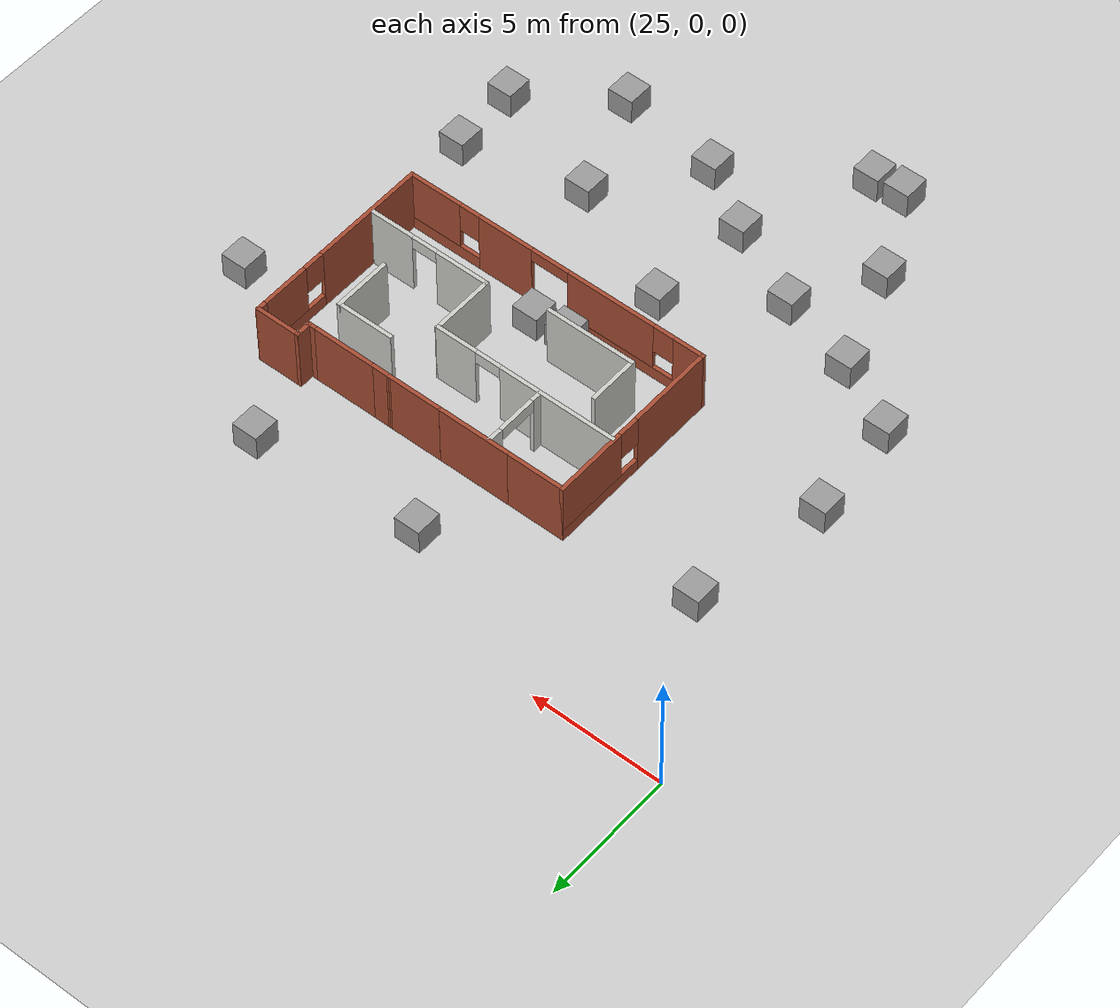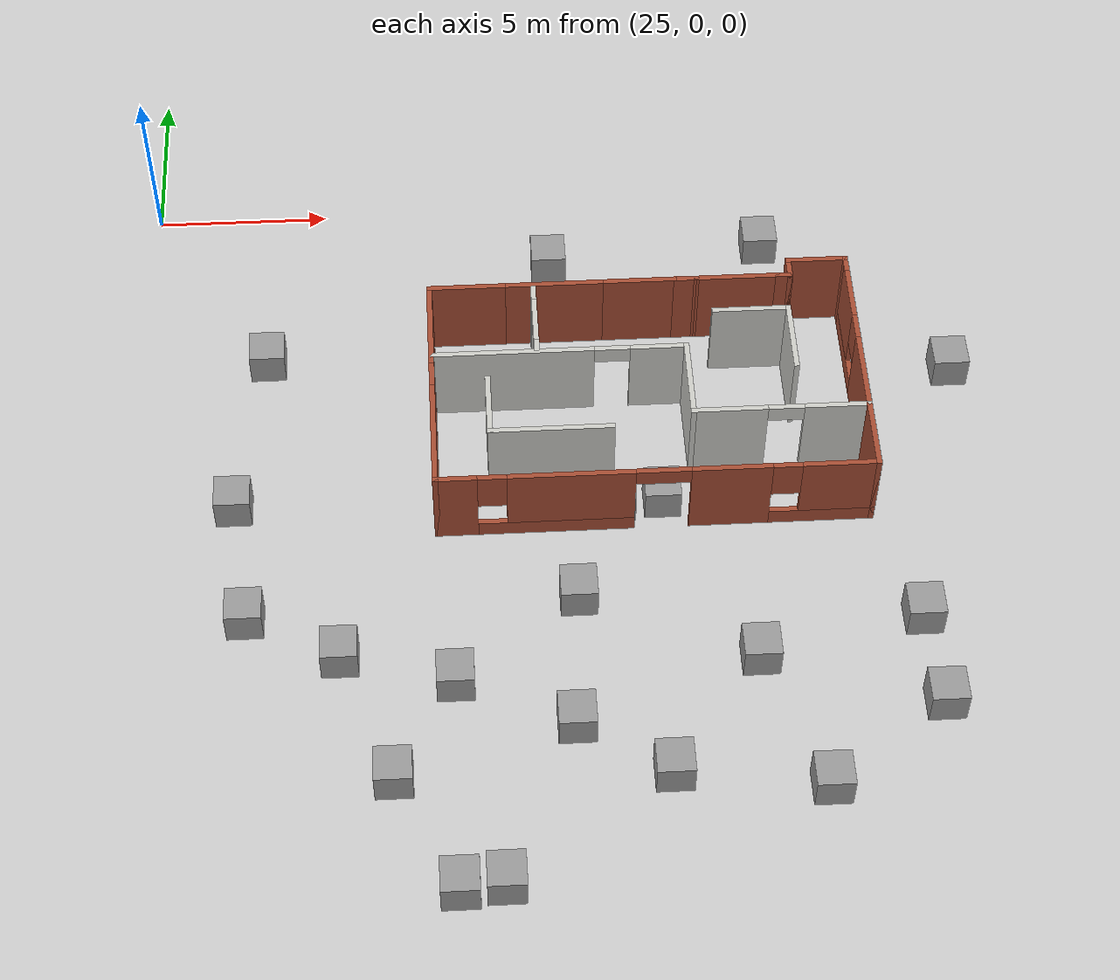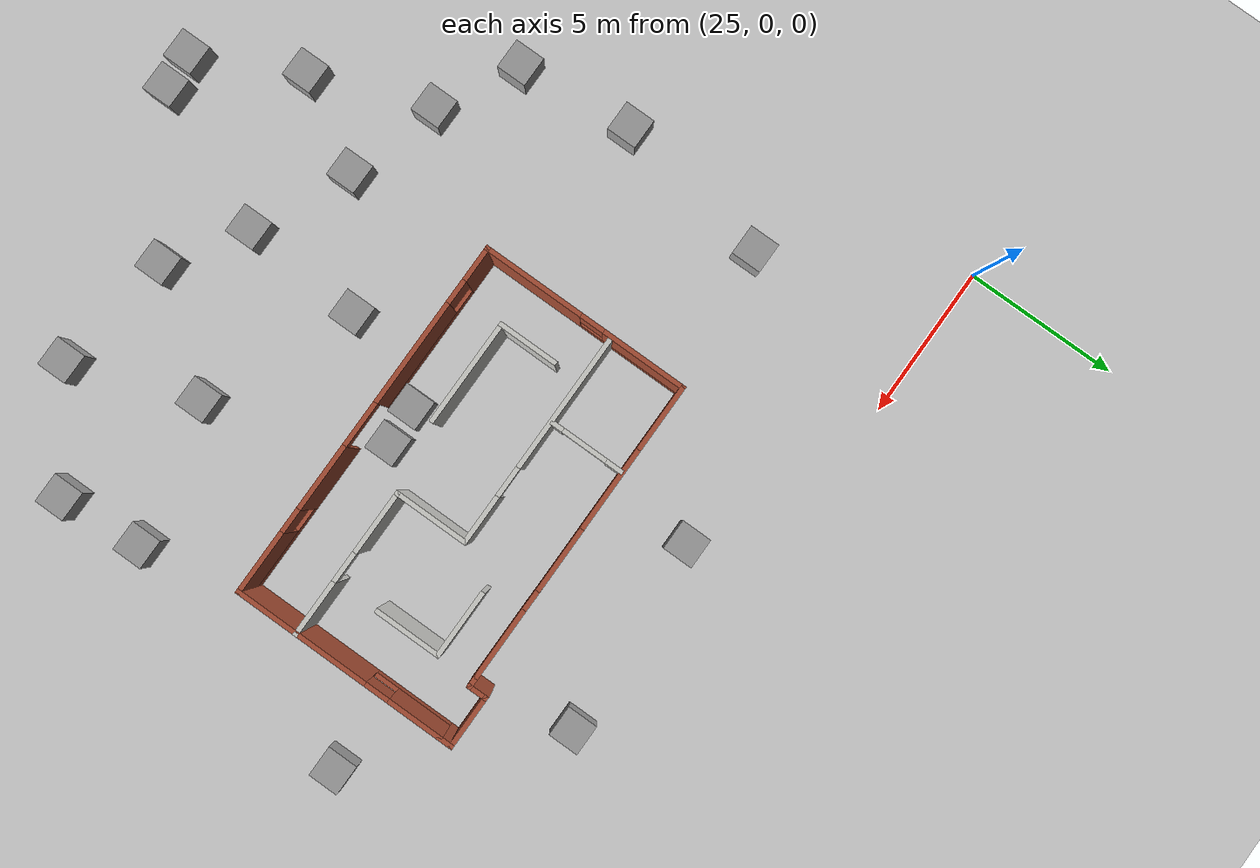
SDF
<sdf version="1.6">
 <world name="default">
  <model name="ground_plane">
   <static>1</static>
   <link name="link">
    <collision name="collision">
     <geometry><plane><normal>0 0 1</normal><size>100 100</size></plane></geometry>
     <surface><friction><ode><mu>100</mu><mu2>50</mu2></ode></friction></surface>
    </collision>
    <visual name="visual">
     <cast_shadows>0</cast_shadows>
     <geometry><plane><normal>0 0 1</normal><size>100 100</size></plane></geometry>
     <material>
      <script><uri>file://media/materials/scripts/gazebo.material</uri><name>Gazebo/Grey</name></script>
     </material>
    </visual>
   </link>
  </model>
  <model name="Multi_12_7home4">
   <pose>39.1247 -8.3603 0 0 -0 0</pose>
   <link name="Wall_20">
    <pose>-0.000494 -3.7 0 0 -0 0</pose>
    <visual name="Wall_20_Visual_0">
     <pose>-5.47297 0 1.25 0 -0 0</pose>
     <geometry><box><size>1.20406 0.15 2.5</size></box></geometry>
     <material>
      <script><uri>file://media/materials/scripts/gazebo.material</uri><name>Gazebo/Bricks</name></script>
      <ambient>0.996078 0.47451 0.0196078 1</ambient>
     </material>
     <meta><layer>0</layer></meta>
    </visual>
    <collision name="Wall_20_Collision_0">
     <geometry><box><size>1.20406 0.15 2.5</size></box></geometry>
     <pose>-5.47297 0 1.25 0 -0 0</pose>
    </collision>
    <visual name="Wall_20_Visual_1">
     <pose>2.02955 0 1.25 0 -0 0</pose>
     <geometry><box><size>2.20541 0.15 2.5</size></box></geometry>
     <material>
      <script><uri>file://media/materials/scripts/gazebo.material</uri><name>Gazebo/Bricks</name></script>
      <ambient>0.996078 0.47451 0.0196078 1</ambient>
     </material>
     <meta><layer>0</layer></meta>
    </visual>
    <collision name="Wall_20_Collision_1">
     <geometry><box><size>2.20541 0.15 2.5</size></box></geometry>
     <pose>2.02955 0 1.25 0 -0 0</pose>
    </collision>
    <visual name="Wall_20_Visual_2">
     <pose>-2.72205 0 0.25 0 -0 0</pose>
     <geometry><box><size>4.29778 0.15 0.5</size></box></geometry>
     <material>
      <script><uri>file://media/materials/scripts/gazebo.material</uri><name>Gazebo/Bricks</name></script>
      <ambient>0.996078 0.47451 0.0196078 1</ambient>
     </material>
     <meta><layer>0</layer></meta>
    </visual>
    <collision name="Wall_20_Collision_2">
     <geometry><box><size>4.29778 0.15 0.5</size></box></geometry>
     <pose>-2.72205 0 0.25 0 -0 0</pose>
    </collision>
    <visual name="Wall_20_Visual_3">
     <pose>4.60363 0 0.25 0 -0 0</pose>
     <geometry><box><size>2.94275 0.15 0.5</size></box></geometry>
     <material>
      <script><uri>file://media/materials/scripts/gazebo.material</uri><name>Gazebo/Bricks</name></script>
      <ambient>0.996078 0.47451 0.0196078 1</ambient>
     </material>
     <meta><layer>0</layer></meta>
    </visual>
    <collision name="Wall_20_Collision_3">
     <geometry><box><size>2.94275 0.15 0.5</size></box></geometry>
     <pose>4.60363 0 0.25 0 -0 0</pose>
    </collision>
    <visual name="Wall_20_Visual_4">
     <pose>-2.32205 0 1.5 0 -0 0</pose>
     <geometry><box><size>3.49778 0.15 2</size></box></geometry>
     <material>
      <script><uri>file://media/materials/scripts/gazebo.material</uri><name>Gazebo/Bricks</name></script>
      <ambient>0.996078 0.47451 0.0196078 1</ambient>
     </material>
     <meta><layer>0</layer></meta>
    </visual>
    <collision name="Wall_20_Collision_4">
     <geometry><box><size>3.49778 0.15 2</size></box></geometry>
     <pose>-2.32205 0 1.5 0 -0 0</pose>
    </collision>
    <visual name="Wall_20_Visual_5">
     <pose>-2.32205 0 1.5 0 -0 0</pose>
     <geometry><box><size>3.49778 0.15 2</size></box></geometry>
     <material>
      <script><uri>file://media/materials/scripts/gazebo.material</uri><name>Gazebo/Bricks</name></script>
      <ambient>0.996078 0.47451 0.0196078 1</ambient>
     </material>
     <meta><layer>0</layer></meta>
    </visual>
    <collision name="Wall_20_Collision_5">
     <geometry><box><size>3.49778 0.15 2</size></box></geometry>
     <pose>-2.32205 0 1.5 0 -0 0</pose>
    </collision>
    <visual name="Wall_20_Visual_6">
     <pose>5.00363 0 1.5 0 -0 0</pose>
     <geometry><box><size>2.14275 0.15 2</size></box></geometry>
     <material>
      <script><uri>file://media/materials/scripts/gazebo.material</uri><name>Gazebo/Bricks</name></script>
      <ambient>0.996078 0.47451 0.0196078 1</ambient>
     </material>
     <meta><layer>0</layer></meta>
    </visual>
    <collision name="Wall_20_Collision_6">
     <geometry><box><size>2.14275 0.15 2</size></box></geometry>
     <pose>5.00363 0 1.5 0 -0 0</pose>
    </collision>
    <visual name="Wall_20_Visual_7">
     <pose>-4.47094 0 1.9 0 -0 0</pose>
     <geometry><box><size>0.8 0.15 1.2</size></box></geometry>
     <material>
      <script><uri>file://media/materials/scripts/gazebo.material</uri><name>Gazebo/Bricks</name></script>
      <ambient>0.996078 0.47451 0.0196078 1</ambient>
     </material>
     <meta><layer>0</layer></meta>
    </visual>
    <collision name="Wall_20_Collision_7">
     <geometry><box><size>0.8 0.15 1.2</size></box></geometry>
     <pose>-4.47094 0 1.9 0 -0 0</pose>
    </collision>
    <visual name="Wall_20_Visual_8">
     <pose>3.53225 0 1.9 0 -0 0</pose>
     <geometry><box><size>0.8 0.15 1.2</size></box></geometry>
     <material>
      <script><uri>file://media/materials/scripts/gazebo.material</uri><name>Gazebo/Bricks</name></script>
      <ambient>0.996078 0.47451 0.0196078 1</ambient>
     </material>
     <meta><layer>0</layer></meta>
    </visual>
    <collision name="Wall_20_Collision_8">
     <geometry><box><size>0.8 0.15 1.2</size></box></geometry>
     <pose>3.53225 0 1.9 0 -0 0</pose>
    </collision>
    <visual name="Wall_20_Visual_9">
     <pose>0.17684 0 2.25 0 -0 0</pose>
     <geometry><box><size>1.5 0.15 0.5</size></box></geometry>
     <material>
      <script><uri>file://media/materials/scripts/gazebo.material</uri><name>Gazebo/Bricks</name></script>
      <ambient>0.996078 0.47451 0.0196078 1</ambient>
     </material>
     <meta><layer>0</layer></meta>
    </visual>
    <collision name="Wall_20_Collision_9">
     <geometry><box><size>1.5 0.15 0.5</size></box></geometry>
     <pose>0.17684 0 2.25 0 -0 0</pose>
    </collision>
    <visual name="Wall_20_Visual_10">
     <pose>0.17684 0 2.25 0 -0 0</pose>
     <geometry><box><size>1.5 0.15 0.5</size></box></geometry>
     <material>
      <script><uri>file://media/materials/scripts/gazebo.material</uri><name>Gazebo/Bricks</name></script>
      <ambient>0.996078 0.47451 0.0196078 1</ambient>
     </material>
     <meta><layer>0</layer></meta>
    </visual>
    <collision name="Wall_20_Collision_10">
     <geometry><box><size>1.5 0.15 0.5</size></box></geometry>
     <pose>0.17684 0 2.25 0 -0 0</pose>
    </collision>
   </link>
   <link name="Wall_22">
    <pose>5.99951 -0.2 0 0 -0 1.5708</pose>
    <visual name="Wall_22_Visual_0">
     <pose>-1.32733 0 1.25 0 -0 0</pose>
     <geometry><box><size>4.49534 0.15 2.5</size></box></geometry>
     <material>
      <script><uri>file://media/materials/scripts/gazebo.material</uri><name>Gazebo/Bricks</name></script>
      <ambient>0.996078 0.47451 0.0196078 1</ambient>
     </material>
     <meta><layer>0</layer></meta>
    </visual>
    <collision name="Wall_22_Collision_0">
     <geometry><box><size>4.49534 0.15 2.5</size></box></geometry>
     <pose>-1.32733 0 1.25 0 -0 0</pose>
    </collision>
    <visual name="Wall_22_Visual_1">
     <pose>2.24767 0 0.25 0 -0 0</pose>
     <geometry><box><size>2.65466 0.15 0.5</size></box></geometry>
     <material>
      <script><uri>file://media/materials/scripts/gazebo.material</uri><name>Gazebo/Bricks</name></script>
      <ambient>0.996078 0.47451 0.0196078 1</ambient>
     </material>
     <meta><layer>0</layer></meta>
    </visual>
    <collision name="Wall_22_Collision_1">
     <geometry><box><size>2.65466 0.15 0.5</size></box></geometry>
     <pose>2.24767 0 0.25 0 -0 0</pose>
    </collision>
    <visual name="Wall_22_Visual_2">
     <pose>2.64767 0 1.5 0 -0 0</pose>
     <geometry><box><size>1.85466 0.15 2</size></box></geometry>
     <material>
      <script><uri>file://media/materials/scripts/gazebo.material</uri><name>Gazebo/Bricks</name></script>
      <ambient>0.996078 0.47451 0.0196078 1</ambient>
     </material>
     <meta><layer>0</layer></meta>
    </visual>
    <collision name="Wall_22_Collision_2">
     <geometry><box><size>1.85466 0.15 2</size></box></geometry>
     <pose>2.64767 0 1.5 0 -0 0</pose>
    </collision>
    <visual name="Wall_22_Visual_3">
     <pose>1.32034 0 1.9 0 -0 0</pose>
     <geometry><box><size>0.8 0.15 1.2</size></box></geometry>
     <material>
      <script><uri>file://media/materials/scripts/gazebo.material</uri><name>Gazebo/Bricks</name></script>
      <ambient>0.996078 0.47451 0.0196078 1</ambient>
     </material>
     <meta><layer>0</layer></meta>
    </visual>
    <collision name="Wall_22_Collision_3">
     <geometry><box><size>0.8 0.15 1.2</size></box></geometry>
     <pose>1.32034 0 1.9 0 -0 0</pose>
    </collision>
   </link>
   <link name="Wall_24">
    <pose>-6.00049 -0.275 0 0 -0 1.5708</pose>
    <visual name="Wall_24_Visual_0">
     <pose>-1.81903 0 1.25 0 -0 0</pose>
     <geometry><box><size>3.36194 0.15 2.5</size></box></geometry>
     <material>
      <script><uri>file://media/materials/scripts/gazebo.material</uri><name>Gazebo/Bricks</name></script>
      <ambient>0.996078 0.47451 0.0196078 1</ambient>
     </material>
     <meta><layer>0</layer></meta>
    </visual>
    <collision name="Wall_24_Collision_0">
     <geometry><box><size>3.36194 0.15 2.5</size></box></geometry>
     <pose>-1.81903 0 1.25 0 -0 0</pose>
    </collision>
    <visual name="Wall_24_Visual_1">
     <pose>1.68097 0 0.25 0 -0 0</pose>
     <geometry><box><size>3.63806 0.15 0.5</size></box></geometry>
     <material>
      <script><uri>file://media/materials/scripts/gazebo.material</uri><name>Gazebo/Bricks</name></script>
      <ambient>0.996078 0.47451 0.0196078 1</ambient>
     </material>
     <meta><layer>0</layer></meta>
    </visual>
    <collision name="Wall_24_Collision_1">
     <geometry><box><size>3.63806 0.15 0.5</size></box></geometry>
     <pose>1.68097 0 0.25 0 -0 0</pose>
    </collision>
    <visual name="Wall_24_Visual_2">
     <pose>2.08097 0 1.5 0 -0 0</pose>
     <geometry><box><size>2.83806 0.15 2</size></box></geometry>
     <material>
      <script><uri>file://media/materials/scripts/gazebo.material</uri><name>Gazebo/Bricks</name></script>
      <ambient>0.996078 0.47451 0.0196078 1</ambient>
     </material>
     <meta><layer>0</layer></meta>
    </visual>
    <collision name="Wall_24_Collision_2">
     <geometry><box><size>2.83806 0.15 2</size></box></geometry>
     <pose>2.08097 0 1.5 0 -0 0</pose>
    </collision>
    <visual name="Wall_24_Visual_3">
     <pose>0.261937 0 1.9 0 -0 0</pose>
     <geometry><box><size>0.8 0.15 1.2</size></box></geometry>
     <material>
      <script><uri>file://media/materials/scripts/gazebo.material</uri><name>Gazebo/Bricks</name></script>
      <ambient>0.996078 0.47451 0.0196078 1</ambient>
     </material>
     <meta><layer>0</layer></meta>
    </visual>
    <collision name="Wall_24_Collision_3">
     <geometry><box><size>0.8 0.15 1.2</size></box></geometry>
     <pose>0.261937 0 1.9 0 -0 0</pose>
    </collision>
   </link>
   <link name="Wall_26">
    <collision name="Wall_26_Collision">
     <geometry><box><size>2.25 0.15 2.5</size></box></geometry>
     <pose>0 0 1.25 0 -0 0</pose>
    </collision>
    <visual name="Wall_26_Visual">
     <pose>0 0 1.25 0 -0 0</pose>
     <geometry><box><size>2.25 0.15 2.5</size></box></geometry>
     <material>
      <script><uri>file://media/materials/scripts/gazebo.material</uri><name>Gazebo/Bricks</name></script>
      <ambient>0.996078 0.47451 0.0196078 1</ambient>
     </material>
     <meta><layer>0</layer></meta>
    </visual>
    <pose>-4.95049 3.15 0 0 -0 0</pose>
   </link>
   <link name="Wall_28">
    <collision name="Wall_28_Collision">
     <geometry><box><size>2.808 0.15 2.5</size></box></geometry>
     <pose>0 0 1.25 0 -0 0</pose>
    </collision>
    <visual name="Wall_28_Visual">
     <pose>0 0 1.25 0 -0 0</pose>
     <geometry><box><size>2.808 0.15 2.5</size></box></geometry>
     <material>
      <script><uri>file://media/materials/scripts/gazebo.material</uri><name>Gazebo/Bricks</name></script>
      <ambient>0.996078 0.47451 0.0196078 1</ambient>
     </material>
     <meta><layer>0</layer></meta>
    </visual>
    <pose>-2.42949 3.151 0 0 -0 0</pose>
   </link>
   <link name="Wall_32">
    <collision name="Wall_32_Collision">
     <geometry><box><size>2.15 0.15 2.5</size></box></geometry>
     <pose>0 0 1.25 0 -0 0</pose>
    </collision>
    <visual name="Wall_32_Visual">
     <pose>0 0 1.25 0 -0 0</pose>
     <geometry><box><size>2.15 0.15 2.5</size></box></geometry>
     <material>
      <script><uri>file://media/materials/scripts/gazebo.material</uri><name>Gazebo/Bricks</name></script>
      <ambient>0.996078 0.47451 0.0196078 1</ambient>
     </material>
     <meta><layer>0</layer></meta>
    </visual>
    <pose>-0.000494 3.154 0 0 -0 0</pose>
   </link>
   <link name="Wall_33">
    <collision name="Wall_33_Collision">
     <geometry><box><size>0.800012 0.15 2.5</size></box></geometry>
     <pose>0 0 1.25 0 -0 0</pose>
    </collision>
    <visual name="Wall_33_Visual">
     <pose>0 0 1.25 0 -0 0</pose>
     <geometry><box><size>0.800012 0.15 2.5</size></box></geometry>
     <material>
      <script><uri>file://media/materials/scripts/gazebo.material</uri><name>Gazebo/Bricks</name></script>
      <ambient>0.996078 0.47451 0.0196078 1</ambient>
     </material>
     <meta><layer>0</layer></meta>
    </visual>
    <pose>1.32451 3.152 0 0 -0 -0.006154</pose>
   </link>
   <link name="Wall_34">
    <collision name="Wall_34_Collision">
     <geometry><box><size>2.5 0.15 2.5</size></box></geometry>
     <pose>0 0 1.25 0 -0 0</pose>
    </collision>
    <visual name="Wall_34_Visual">
     <pose>0 0 1.25 0 -0 0</pose>
     <geometry><box><size>2.5 0.15 2.5</size></box></geometry>
     <material>
      <script><uri>file://media/materials/scripts/gazebo.material</uri><name>Gazebo/Bricks</name></script>
      <ambient>0.996078 0.47451 0.0196078 1</ambient>
     </material>
     <meta><layer>0</layer></meta>
    </visual>
    <pose>2.82451 3.15 0 0 -0 0</pose>
   </link>
   <link name="Wall_35">
    <collision name="Wall_35_Collision">
     <geometry><box><size>0.5 0.15 2.5</size></box></geometry>
     <pose>0 0 1.25 0 -0 0</pose>
    </collision>
    <visual name="Wall_35_Visual">
     <pose>0 0 1.25 0 -0 0</pose>
     <geometry><box><size>0.5 0.15 2.5</size></box></geometry>
     <material>
      <script><uri>file://media/materials/scripts/gazebo.material</uri><name>Gazebo/Bricks</name></script>
      <ambient>1 1 1 1</ambient>
     </material>
     <meta><layer>0</layer></meta>
    </visual>
    <pose>4.17451 3.15 0 0 -0 0</pose>
   </link>
   <link name="Wall_36">
    <collision name="Wall_36_Collision">
     <geometry><box><size>0.7 0.15 2.5</size></box></geometry>
     <pose>0 0 1.25 0 -0 0</pose>
    </collision>
    <visual name="Wall_36_Visual">
     <pose>0 0 1.25 0 -0 0</pose>
     <geometry><box><size>0.7 0.15 2.5</size></box></geometry>
     <material>
      <script><uri>file://media/materials/scripts/gazebo.material</uri><name>Gazebo/Bricks</name></script>
      <ambient>0.996078 0.47451 0.0196078 1</ambient>
     </material>
     <meta><layer>0</layer></meta>
    </visual>
    <pose>4.34951 3.425 0 0 -0 1.5708</pose>
   </link>
   <link name="Wall_37">
    <collision name="Wall_37_Collision">
     <geometry><box><size>1.8 0.15 2.5</size></box></geometry>
     <pose>0 0 1.25 0 -0 0</pose>
    </collision>
    <visual name="Wall_37_Visual">
     <pose>0 0 1.25 0 -0 0</pose>
     <geometry><box><size>1.8 0.15 2.5</size></box></geometry>
     <material>
      <script><uri>file://media/materials/scripts/gazebo.material</uri><name>Gazebo/Bricks</name></script>
      <ambient>0.996078 0.47451 0.0196078 1</ambient>
     </material>
     <meta><layer>0</layer></meta>
    </visual>
    <pose>5.17451 3.7 0 0 -0 0</pose>
   </link>
   <link name="Wall_38">
    <collision name="Wall_38_Collision">
     <geometry><box><size>0.55 0.15 2.5</size></box></geometry>
     <pose>0 0 1.25 0 -0 0</pose>
    </collision>
    <visual name="Wall_38_Visual">
     <pose>0 0 1.25 0 -0 0</pose>
     <geometry><box><size>0.55 0.15 2.5</size></box></geometry>
     <material>
      <script><uri>file://media/materials/scripts/gazebo.material</uri><name>Gazebo/Bricks</name></script>
      <ambient>0.996078 0.47451 0.0196078 1</ambient>
     </material>
     <meta><layer>0</layer></meta>
    </visual>
    <pose>5.99951 3.5 0 0 -0 -1.5708</pose>
   </link>
   <link name="Wall_48">
    <pose>-2.39951 0.665247 0 0 -0 0</pose>
    <visual name="Wall_48_Visual_0">
     <pose>-1.32877 0 1.25 0 -0 0</pose>
     <geometry><box><size>4.59246 0.15 2.5</size></box></geometry>
     <material>
      <script><uri>file://media/materials/scripts/gazebo.material</uri><name>Gazebo/CeilingTiled</name></script>
      <ambient>1 1 1 1</ambient>
     </material>
     <meta><layer>0</layer></meta>
    </visual>
    <collision name="Wall_48_Collision_0">
     <geometry><box><size>4.59246 0.15 2.5</size></box></geometry>
     <pose>-1.32877 0 1.25 0 -0 0</pose>
    </collision>
    <visual name="Wall_48_Visual_1">
     <pose>2.79623 0 1.25 0 -0 0</pose>
     <geometry><box><size>1.65754 0.15 2.5</size></box></geometry>
     <material>
      <script><uri>file://media/materials/scripts/gazebo.material</uri><name>Gazebo/CeilingTiled</name></script>
      <ambient>1 1 1 1</ambient>
     </material>
     <meta><layer>0</layer></meta>
    </visual>
    <collision name="Wall_48_Collision_1">
     <geometry><box><size>1.65754 0.15 2.5</size></box></geometry>
     <pose>2.79623 0 1.25 0 -0 0</pose>
    </collision>
    <visual name="Wall_48_Visual_2">
     <pose>1.46746 0 2.25 0 -0 0</pose>
     <geometry><box><size>1 0.15 0.5</size></box></geometry>
     <material>
      <script><uri>file://media/materials/scripts/gazebo.material</uri><name>Gazebo/CeilingTiled</name></script>
      <ambient>1 1 1 1</ambient>
     </material>
     <meta><layer>0</layer></meta>
    </visual>
    <collision name="Wall_48_Collision_2">
     <geometry><box><size>1 0.15 0.5</size></box></geometry>
     <pose>1.46746 0 2.25 0 -0 0</pose>
    </collision>
   </link>
   <link name="Wall_49">
    <collision name="Wall_49_Collision">
     <geometry><box><size>2.5 0.15 2.5</size></box></geometry>
     <pose>0 0 1.25 0 -0 0</pose>
    </collision>
    <visual name="Wall_49_Visual">
     <pose>0 0 1.25 0 -0 0</pose>
     <geometry><box><size>2.5 0.15 2.5</size></box></geometry>
     <material>
      <script><uri>file://media/materials/scripts/gazebo.material</uri><name>Gazebo/CeilingTiled</name></script>
      <ambient>1 1 1 1</ambient>
     </material>
     <meta><layer>0</layer></meta>
    </visual>
    <pose>1.15049 -0.509753 0 0 -0 -1.5708</pose>
   </link>
   <link name="Wall_50">
    <pose>3.57549 -1.68475 0 0 -0 0</pose>
    <visual name="Wall_50_Visual_0">
     <pose>-1.43337 0 1.25 0 -0 0</pose>
     <geometry><box><size>2.13325 0.15 2.5</size></box></geometry>
     <material>
      <script><uri>file://media/materials/scripts/gazebo.material</uri><name>Gazebo/CeilingTiled</name></script>
      <ambient>1 1 1 1</ambient>
     </material>
     <meta><layer>0</layer></meta>
    </visual>
    <collision name="Wall_50_Collision_0">
     <geometry><box><size>2.13325 0.15 2.5</size></box></geometry>
     <pose>-1.43337 0 1.25 0 -0 0</pose>
    </collision>
    <visual name="Wall_50_Visual_1">
     <pose>1.56663 0 1.25 0 -0 0</pose>
     <geometry><box><size>1.86675 0.15 2.5</size></box></geometry>
     <material>
      <script><uri>file://media/materials/scripts/gazebo.material</uri><name>Gazebo/CeilingTiled</name></script>
      <ambient>1 1 1 1</ambient>
     </material>
     <meta><layer>0</layer></meta>
    </visual>
    <collision name="Wall_50_Collision_1">
     <geometry><box><size>1.86675 0.15 2.5</size></box></geometry>
     <pose>1.56663 0 1.25 0 -0 0</pose>
    </collision>
    <visual name="Wall_50_Visual_2">
     <pose>0.133254 0 2.25 0 -0 0</pose>
     <geometry><box><size>1 0.15 0.5</size></box></geometry>
     <material>
      <script><uri>file://media/materials/scripts/gazebo.material</uri><name>Gazebo/CeilingTiled</name></script>
      <ambient>1 1 1 1</ambient>
     </material>
     <meta><layer>0</layer></meta>
    </visual>
    <collision name="Wall_50_Collision_2">
     <geometry><box><size>1 0.15 0.5</size></box></geometry>
     <pose>0.133254 0 2.25 0 -0 0</pose>
    </collision>
   </link>
   <link name="Wall_52">
    <collision name="Wall_52_Collision">
     <geometry><box><size>2 0.15 2.5</size></box></geometry>
     <pose>0 0 1.25 0 -0 0</pose>
    </collision>
    <visual name="Wall_52_Visual">
     <pose>0 0 1.25 0 -0 0</pose>
     <geometry><box><size>2 0.15 2.5</size></box></geometry>
     <material>
      <script><uri>file://media/materials/scripts/gazebo.material</uri><name>Gazebo/CeilingTiled</name></script>
      <ambient>1 1 1 1</ambient>
     </material>
     <meta><layer>0</layer></meta>
    </visual>
    <pose>-4.45905 -1.17455 0 0 -0 -1.5708</pose>
   </link>
   <link name="Wall_53">
    <collision name="Wall_53_Collision">
     <geometry><box><size>3.5 0.15 2.5</size></box></geometry>
     <pose>0 0 1.25 0 -0 0</pose>
    </collision>
    <visual name="Wall_53_Visual">
     <pose>0 0 1.25 0 -0 0</pose>
     <geometry><box><size>3.5 0.15 2.5</size></box></geometry>
     <material>
      <script><uri>file://media/materials/scripts/gazebo.material</uri><name>Gazebo/CeilingTiled</name></script>
      <ambient>1 1 1 1</ambient>
     </material>
     <meta><layer>0</layer></meta>
    </visual>
    <pose>-2.78405 -2.09955 0 0 -0 0</pose>
   </link>
   <link name="Wall_55">
    <pose>-3.03587 1.91682 0 0 -0 -1.5708</pose>
    <visual name="Wall_55_Visual_0">
     <pose>-0.958422 0 1.25 0 -0 0</pose>
     <geometry><box><size>0.583157 0.15 2.5</size></box></geometry>
     <material>
      <script><uri>file://media/materials/scripts/gazebo.material</uri><name>Gazebo/CeilingTiled</name></script>
      <ambient>1 1 1 1</ambient>
     </material>
     <meta><layer>0</layer></meta>
    </visual>
    <collision name="Wall_55_Collision_0">
     <geometry><box><size>0.583157 0.15 2.5</size></box></geometry>
     <pose>-0.958422 0 1.25 0 -0 0</pose>
    </collision>
    <visual name="Wall_55_Visual_1">
     <pose>1.04158 0 1.25 0 -0 0</pose>
     <geometry><box><size>0.416843 0.15 2.5</size></box></geometry>
     <material>
      <script><uri>file://media/materials/scripts/gazebo.material</uri><name>Gazebo/CeilingTiled</name></script>
      <ambient>1 1 1 1</ambient>
     </material>
     <meta><layer>0</layer></meta>
    </visual>
    <collision name="Wall_55_Collision_1">
     <geometry><box><size>0.416843 0.15 2.5</size></box></geometry>
     <pose>1.04158 0 1.25 0 -0 0</pose>
    </collision>
    <visual name="Wall_55_Visual_2">
     <pose>0.083157 0 2.25 0 -0 0</pose>
     <geometry><box><size>1.5 0.15 0.5</size></box></geometry>
     <material>
      <script><uri>file://media/materials/scripts/gazebo.material</uri><name>Gazebo/CeilingTiled</name></script>
      <ambient>1 1 1 1</ambient>
     </material>
     <meta><layer>0</layer></meta>
    </visual>
    <collision name="Wall_55_Collision_2">
     <geometry><box><size>1.5 0.15 0.5</size></box></geometry>
     <pose>0.083157 0 2.25 0 -0 0</pose>
    </collision>
   </link>
   <link name="Wall_57">
    <collision name="Wall_57_Collision">
     <geometry><box><size>2.25 0.15 2.5</size></box></geometry>
     <pose>0 0 1.25 0 -0 0</pose>
    </collision>
    <visual name="Wall_57_Visual">
     <pose>0 0 1.25 0 -0 0</pose>
     <geometry><box><size>2.25 0.15 2.5</size></box></geometry>
     <material>
      <script><uri>file://media/materials/scripts/gazebo.material</uri><name>Gazebo/CeilingTiled</name></script>
      <ambient>1 1 1 1</ambient>
     </material>
     <meta><layer>0</layer></meta>
    </visual>
    <pose>3.10869 1.91616 0 0 -0 0</pose>
   </link>
   <link name="Wall_58">
    <collision name="Wall_58_Collision">
     <geometry><box><size>2.25 0.15 2.5</size></box></geometry>
     <pose>0 0 1.25 0 -0 0</pose>
    </collision>
    <visual name="Wall_58_Visual">
     <pose>0 0 1.25 0 -0 0</pose>
     <geometry><box><size>2.25 0.15 2.5</size></box></geometry>
     <material>
      <script><uri>file://media/materials/scripts/gazebo.material</uri><name>Gazebo/CeilingTiled</name></script>
      <ambient>1 1 1 1</ambient>
     </material>
     <meta><layer>0</layer></meta>
    </visual>
    <pose>4.15869 0.866155 0 0 -0 -1.5708</pose>
   </link>
   <static>1</static>
  </model>
  <model name="unit_box_28_clone_9">
   <pose>28.3793 -5.83197 0.5005 0 0 -4e-06</pose>
   <link name="link">
    <inertial>
     <mass>1</mass>
     <inertia>
      <ixx>0.166667</ixx>
      <ixy>0</ixy>
      <ixz>0</ixz>
      <iyy>0.166667</iyy>
      <iyz>0</iyz>
      <izz>0.166667</izz>
     </inertia>
    </inertial>
    <collision name="collision"><geometry><box><size>1 1 1</size></box></geometry></collision>
    <visual name="visual">
     <geometry><box><size>1 1 1</size></box></geometry>
     <material>
      <script><name>Gazebo/Grey</name><uri>file://media/materials/scripts/gazebo.material</uri></script>
     </material>
    </visual>
   </link>
  </model>
  <model name="unit_box_28_clone_10">
   <pose>36.6596 -2.4304 0.5005 -0 -0 -0</pose>
   <link name="link">
    <inertial>
     <mass>1</mass>
     <inertia>
      <ixx>0.166667</ixx>
      <ixy>0</ixy>
      <ixz>0</ixz>
      <iyy>0.166667</iyy>
      <iyz>0</iyz>
      <izz>0.166667</izz>
     </inertia>
    </inertial>
    <collision name="collision"><geometry><box><size>1 1 1</size></box></geometry></collision>
    <visual name="visual">
     <geometry><box><size>1 1 1</size></box></geometry>
     <material>
      <script><name>Gazebo/Grey</name><uri>file://media/materials/scripts/gazebo.material</uri></script>
     </material>
    </visual>
   </link>
  </model>
  <model name="unit_box_28_clone_11">
   <pose>43 -2 0.5005 -0 -0 -0</pose>
   <link name="link">
    <inertial>
     <mass>1</mass>
     <inertia>
      <ixx>0.166667</ixx>
      <ixy>0</ixy>
      <ixz>0</ixz>
      <iyy>0.166667</iyy>
      <iyz>0</iyz>
      <izz>0.166667</izz>
     </inertia>
    </inertial>
    <collision name="collision"><geometry><box><size>1 1 1</size></box></geometry></collision>
    <visual name="visual">
     <geometry><box><size>1 1 1</size></box></geometry>
     <material>
      <script><name>Gazebo/Grey</name><uri>file://media/materials/scripts/gazebo.material</uri></script>
     </material>
    </visual>
   </link>
  </model>
  <model name="unit_box_28_clone_12">
   <pose>47.9999 -7.00002 0.500497 6e-06 -3.4e-05 0.000135</pose>
   <link name="link">
    <inertial>
     <mass>1</mass>
     <inertia>
      <ixx>0.166667</ixx>
      <ixy>0</ixy>
      <ixz>0</ixz>
      <iyy>0.166667</iyy>
      <iyz>0</iyz>
      <izz>0.166667</izz>
     </inertia>
    </inertial>
    <collision name="collision"><geometry><box><size>1 1 1</size></box></geometry></collision>
    <visual name="visual">
     <geometry><box><size>1 1 1</size></box></geometry>
     <material>
      <script><name>Gazebo/Grey</name><uri>file://media/materials/scripts/gazebo.material</uri></script>
     </material>
    </visual>
   </link>
  </model>
  <model name="unit_box_28_clone_14">
   <pose>46.2755 -18.2247 0.5005 -0 -0 -0</pose>
   <link name="link">
    <inertial>
     <mass>1</mass>
     <inertia>
      <ixx>0.166667</ixx>
      <ixy>0</ixy>
      <ixz>0</ixz>
      <iyy>0.166667</iyy>
      <iyz>0</iyz>
      <izz>0.166667</izz>
     </inertia>
    </inertial>
    <collision name="collision"><geometry><box><size>1 1 1</size></box></geometry></collision>
    <visual name="visual">
     <geometry><box><size>1 1 1</size></box></geometry>
     <material>
      <script><name>Gazebo/Grey</name><uri>file://media/materials/scripts/gazebo.material</uri></script>
     </material>
    </visual>
   </link>
  </model>
  <model name="unit_box_28_clone_15">
   <pose>46.0741 -15.5342 0.5005 -0 -0 -0</pose>
   <link name="link">
    <inertial>
     <mass>1</mass>
     <inertia>
      <ixx>0.166667</ixx>
      <ixy>0</ixy>
      <ixz>0</ixz>
      <iyy>0.166667</iyy>
      <iyz>0</iyz>
      <izz>0.166667</izz>
     </inertia>
    </inertial>
    <collision name="collision"><geometry><box><size>1 1 1</size></box></geometry></collision>
    <visual name="visual">
     <geometry><box><size>1 1 1</size></box></geometry>
     <material>
      <script><name>Gazebo/Grey</name><uri>file://media/materials/scripts/gazebo.material</uri></script>
     </material>
    </visual>
   </link>
  </model>
  <model name="unit_box_28_clone_16">
   <pose>43 -20.5848 0.5005 -0 -0 -0</pose>
   <link name="link">
    <inertial>
     <mass>1</mass>
     <inertia>
      <ixx>0.166667</ixx>
      <ixy>0</ixy>
      <ixz>0</ixz>
      <iyy>0.166667</iyy>
      <iyz>0</iyz>
      <izz>0.166667</izz>
     </inertia>
    </inertial>
    <collision name="collision"><geometry><box><size>1 1 1</size></box></geometry></collision>
    <visual name="visual">
     <geometry><box><size>1 1 1</size></box></geometry>
     <material>
      <script><name>Gazebo/Grey</name><uri>file://media/materials/scripts/gazebo.material</uri></script>
     </material>
    </visual>
   </link>
  </model>
  <model name="unit_box_28_clone_17">
   <pose>41.5762 -16.598 0.5005 -0 -0 -0</pose>
   <link name="link">
    <inertial>
     <mass>1</mass>
     <inertia>
      <ixx>0.166667</ixx>
      <ixy>0</ixy>
      <ixz>0</ixz>
      <iyy>0.166667</iyy>
      <iyz>0</iyz>
      <izz>0.166667</izz>
     </inertia>
    </inertial>
    <collision name="collision"><geometry><box><size>1 1 1</size></box></geometry></collision>
    <visual name="visual">
     <geometry><box><size>1 1 1</size></box></geometry>
     <material>
      <script><name>Gazebo/Grey</name><uri>file://media/materials/scripts/gazebo.material</uri></script>
     </material>
    </visual>
   </link>
  </model>
  <model name="unit_box_28_clone_18">
   <pose>36.5923 -18.4346 0.5005 -0 -0 -0</pose>
   <link name="link">
    <inertial>
     <mass>1</mass>
     <inertia>
      <ixx>0.166667</ixx>
      <ixy>0</ixy>
      <ixz>0</ixz>
      <iyy>0.166667</iyy>
      <iyz>0</iyz>
      <izz>0.166667</izz>
     </inertia>
    </inertial>
    <collision name="collision"><geometry><box><size>1 1 1</size></box></geometry></collision>
    <visual name="visual">
     <geometry><box><size>1 1 1</size></box></geometry>
     <material>
      <script><name>Gazebo/Grey</name><uri>file://media/materials/scripts/gazebo.material</uri></script>
     </material>
    </visual>
   </link>
  </model>
  <model name="unit_box_28_clone_19">
   <pose>39 -20 0.5005 -0 -0 -0</pose>
   <link name="link">
    <inertial>
     <mass>1</mass>
     <inertia>
      <ixx>0.166667</ixx>
      <ixy>0</ixy>
      <ixz>0</ixz>
      <iyy>0.166667</iyy>
      <iyz>0</iyz>
      <izz>0.166667</izz>
     </inertia>
    </inertial>
    <collision name="collision"><geometry><box><size>1 1 1</size></box></geometry></collision>
    <visual name="visual">
     <geometry><box><size>1 1 1</size></box></geometry>
     <material>
      <script><name>Gazebo/Grey</name><uri>file://media/materials/scripts/gazebo.material</uri></script>
     </material>
    </visual>
   </link>
  </model>
  <model name="unit_box_28_clone_20">
   <pose>33.4767 -17 0.5005 -0 -0 -0</pose>
   <link name="link">
    <inertial>
     <mass>1</mass>
     <inertia>
      <ixx>0.166667</ixx>
      <ixy>0</ixy>
      <ixz>0</ixz>
      <iyy>0.166667</iyy>
      <iyz>0</iyz>
      <izz>0.166667</izz>
     </inertia>
    </inertial>
    <collision name="collision"><geometry><box><size>1 1 1</size></box></geometry></collision>
    <visual name="visual">
     <geometry><box><size>1 1 1</size></box></geometry>
     <material>
      <script><name>Gazebo/Grey</name><uri>file://media/materials/scripts/gazebo.material</uri></script>
     </material>
    </visual>
   </link>
  </model>
  <model name="unit_box_28_clone_21">
   <pose>36.8663 -14.4591 0.5005 -0 -0 -0</pose>
   <link name="link">
    <inertial>
     <mass>1</mass>
     <inertia>
      <ixx>0.166667</ixx>
      <ixy>0</ixy>
      <ixz>0</ixz>
      <iyy>0.166667</iyy>
      <iyz>0</iyz>
      <izz>0.166667</izz>
     </inertia>
    </inertial>
    <collision name="collision"><geometry><box><size>1 1 1</size></box></geometry></collision>
    <visual name="visual">
     <geometry><box><size>1 1 1</size></box></geometry>
     <material>
      <script><name>Gazebo/Grey</name><uri>file://media/materials/scripts/gazebo.material</uri></script>
     </material>
    </visual>
   </link>
  </model>
  <model name="unit_box_28_clone_22">
   <pose>31.8083 -19.8516 0.5005 -0 -0 -0</pose>
   <link name="link">
    <inertial>
     <mass>1</mass>
     <inertia>
      <ixx>0.166667</ixx>
      <ixy>0</ixy>
      <ixz>0</ixz>
      <iyy>0.166667</iyy>
      <iyz>0</iyz>
      <izz>0.166667</izz>
     </inertia>
    </inertial>
    <collision name="collision"><geometry><box><size>1 1 1</size></box></geometry></collision>
    <visual name="visual">
     <geometry><box><size>1 1 1</size></box></geometry>
     <material>
      <script><name>Gazebo/Grey</name><uri>file://media/materials/scripts/gazebo.material</uri></script>
     </material>
    </visual>
   </link>
  </model>
  <model name="unit_box_28_clone_23">
   <pose>27.891 -14.7646 0.5005 -0 -0 -0</pose>
   <link name="link">
    <inertial>
     <mass>1</mass>
     <inertia>
      <ixx>0.166667</ixx>
      <ixy>0</ixy>
      <ixz>0</ixz>
      <iyy>0.166667</iyy>
      <iyz>0</iyz>
      <izz>0.166667</izz>
     </inertia>
    </inertial>
    <collision name="collision"><geometry><box><size>1 1 1</size></box></geometry></collision>
    <visual name="visual">
     <geometry><box><size>1 1 1</size></box></geometry>
     <material>
      <script><name>Gazebo/Grey</name><uri>file://media/materials/scripts/gazebo.material</uri></script>
     </material>
    </visual>
   </link>
  </model>
  <model name="unit_box_28_clone_24">
   <pose>30.4307 -16.11 0.5005 -0 -0 -0</pose>
   <link name="link">
    <inertial>
     <mass>1</mass>
     <inertia>
      <ixx>0.166667</ixx>
      <ixy>0</ixy>
      <ixz>0</ixz>
      <iyy>0.166667</iyy>
      <iyz>0</iyz>
      <izz>0.166667</izz>
     </inertia>
    </inertial>
    <collision name="collision"><geometry><box><size>1 1 1</size></box></geometry></collision>
    <visual name="visual">
     <geometry><box><size>1 1 1</size></box></geometry>
     <material>
      <script><name>Gazebo/Grey</name><uri>file://media/materials/scripts/gazebo.material</uri></script>
     </material>
    </visual>
   </link>
  </model>
  <model name="unit_box_28_clone_28">
   <pose>27.5024 -11.0001 0.500251 -4e-06 -0.000505 2e-06</pose>
   <link name="link">
    <inertial>
     <mass>1</mass>
     <inertia>
      <ixx>0.166667</ixx>
      <ixy>0</ixy>
      <ixz>0</ixz>
      <iyy>0.166667</iyy>
      <iyz>0</iyz>
      <izz>0.166667</izz>
     </inertia>
    </inertial>
    <collision name="collision"><geometry><box><size>1 1 1</size></box></geometry></collision>
    <visual name="visual">
     <geometry><box><size>1 1 1</size></box></geometry>
     <material>
      <script><name>Gazebo/Grey</name><uri>file://media/materials/scripts/gazebo.material</uri></script>
     </material>
    </visual>
   </link>
  </model>
  <model name="unit_box_28_clone_50_clone_9">
   <pose>39.3652 -11.2995 0.5 0 -0 0</pose>
   <link name="link">
    <inertial>
     <mass>1</mass>
     <inertia>
      <ixx>0.166667</ixx>
      <ixy>0</ixy>
      <ixz>0</ixz>
      <iyy>0.166667</iyy>
      <iyz>0</iyz>
      <izz>0.166667</izz>
     </inertia>
    </inertial>
    <collision name="collision"><geometry><box><size>1 1 1</size></box></geometry></collision>
    <visual name="visual">
     <geometry><box><size>1 1 1</size></box></geometry>
     <material>
      <script><name>Gazebo/Grey</name><uri>file://media/materials/scripts/gazebo.material</uri></script>
     </material>
    </visual>
   </link>
  </model>
  <model name="unit_box_28_clone_50_clone_10">
   <pose>38.1062 -11.3808 0.5 0 -0 0</pose>
   <link name="link">
    <inertial>
     <mass>1</mass>
     <inertia>
      <ixx>0.166667</ixx>
      <ixy>0</ixy>
      <ixz>0</ixz>
      <iyy>0.166667</iyy>
      <iyz>0</iyz>
      <izz>0.166667</izz>
     </inertia>
    </inertial>
    <collision name="collision"><geometry><box><size>1 1 1</size></box></geometry></collision>
    <visual name="visual">
     <geometry><box><size>1 1 1</size></box></geometry>
     <material>
      <script><name>Gazebo/Grey</name><uri>file://media/materials/scripts/gazebo.material</uri></script>
     </material>
    </visual>
   </link>
  </model>
  <model name="unit_box_28_clone_50_clone_15">
   <pose>34.5797 -22.9857 0.5 0 -0 0</pose>
   <link name="link">
    <inertial>
     <mass>1</mass>
     <inertia>
      <ixx>0.166667</ixx>
      <ixy>0</ixy>
      <ixz>0</ixz>
      <iyy>0.166667</iyy>
      <iyz>0</iyz>
      <izz>0.166667</izz>
     </inertia>
    </inertial>
    <collision name="collision"><geometry><box><size>1 1 1</size></box></geometry></collision>
    <visual name="visual">
     <geometry><box><size>1 1 1</size></box></geometry>
     <material>
      <script><name>Gazebo/Grey</name><uri>file://media/materials/scripts/gazebo.material</uri></script>
     </material>
    </visual>
   </link>
  </model>
  <model name="unit_box_28_clone_50_clone_16">
   <pose>33.4182 -23.076 0.5 0 -0 0</pose>
   <link name="link">
    <inertial>
     <mass>1</mass>
     <inertia>
      <ixx>0.166667</ixx>
      <ixy>0</ixy>
      <ixz>0</ixz>
      <iyy>0.166667</iyy>
      <iyz>0</iyz>
      <izz>0.166667</izz>
     </inertia>
    </inertial>
    <collision name="collision"><geometry><box><size>1 1 1</size></box></geometry></collision>
    <visual name="visual">
     <geometry><box><size>1 1 1</size></box></geometry>
     <material>
      <script><name>Gazebo/Grey</name><uri>file://media/materials/scripts/gazebo.material</uri></script>
     </material>
    </visual>
   </link>
  </model>
 </world>
</sdf>
